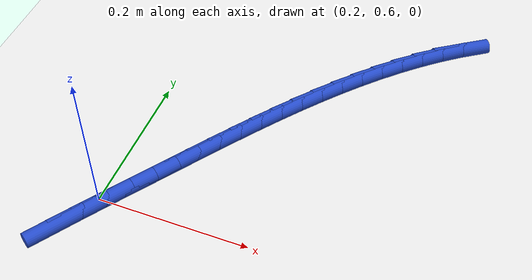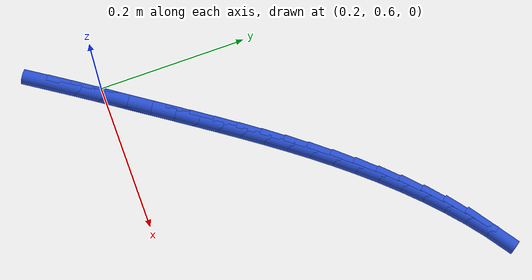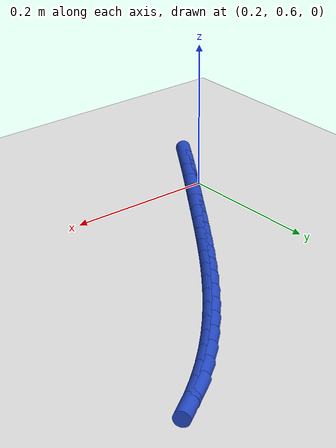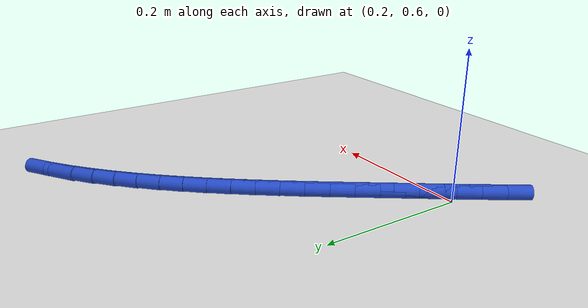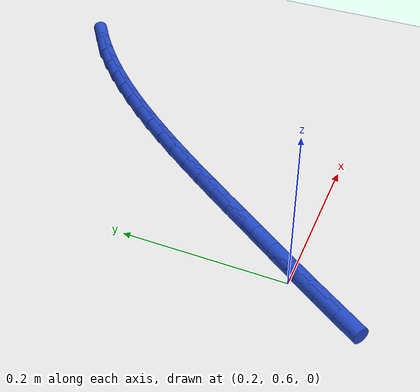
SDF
<sdf version="1.6">
 <world name="default">
  <model name="ground_plane">
   <static>1</static>
   <link name="link">
    <collision name="collision">
     <geometry><plane><normal>0 0 1</normal><size>100 100</size></plane></geometry>
     <surface><friction><ode><mu>100</mu><mu2>50</mu2></ode></friction></surface>
    </collision>
    <visual name="visual">
     <cast_shadows>0</cast_shadows>
     <geometry><plane><normal>0 0 1</normal><size>100 100</size></plane></geometry>
     <material>
      <script><uri>file://media/materials/scripts/gazebo.material</uri><name>Gazebo/WhiteGlow</name></script>
     </material>
    </visual>
   </link>
  </model>
  <model name="line">
   <link name="link_18">
    <pose>0.17419282601120892 0.540691129927328 0.01 0 1.57 0.9867921795562007</pose>
    <collision name="collision">
     <geometry><cylinder><radius>0.01</radius><length>0.08</length></cylinder></geometry>
    </collision>
    <visual name="visual">
     <material>
      <script><name>Gazebo/Blue</name><uri>file://media/materials/scripts/gazebo.material</uri></script>
     </material>
     <geometry><cylinder><radius>0.01</radius><length>0.08</length></cylinder></geometry>
    </visual>
   </link>
   <link name="link_19">
    <pose>0.19209507505564863 0.5677785478877495 0.01 0 1.57 0.9778795110179378</pose>
    <collision name="collision">
     <geometry><cylinder><radius>0.01</radius><length>0.08</length></cylinder></geometry>
    </collision>
    <visual name="visual">
     <material>
      <script><name>Gazebo/Blue</name><uri>file://media/materials/scripts/gazebo.material</uri></script>
     </material>
     <geometry><cylinder><radius>0.01</radius><length>0.08</length></cylinder></geometry>
    </visual>
   </link>
   <link name="link_20">
    <pose>0.2102653810658046 0.5947459267097743 0.01 0 1.57 0.9722698907152042</pose>
    <collision name="collision">
     <geometry><cylinder><radius>0.01</radius><length>0.08</length></cylinder></geometry>
    </collision>
    <visual name="visual">
     <material>
      <script><name>Gazebo/Blue</name><uri>file://media/materials/scripts/gazebo.material</uri></script>
     </material>
     <geometry><cylinder><radius>0.01</radius><length>0.08</length></cylinder></geometry>
    </visual>
   </link>
   <link name="link_21">
    <pose>0.22860094950167287 0.6216318811955966 0.01 0 1.57 0.9699428429115506</pose>
    <collision name="collision">
     <geometry><cylinder><radius>0.01</radius><length>0.08</length></cylinder></geometry>
    </collision>
    <visual name="visual">
     <material>
      <script><name>Gazebo/Blue</name><uri>file://media/materials/scripts/gazebo.material</uri></script>
     </material>
     <geometry><cylinder><radius>0.01</radius><length>0.08</length></cylinder></geometry>
    </visual>
   </link>
   <link name="link_22">
    <pose>0.24699898582324953 0.6484750261474106 0.01 0 1.57 0.9704906754867219</pose>
    <collision name="collision">
     <geometry><cylinder><radius>0.01</radius><length>0.08</length></cylinder></geometry>
    </collision>
    <visual name="visual">
     <material>
      <script><name>Gazebo/Blue</name><uri>file://media/materials/scripts/gazebo.material</uri></script>
     </material>
     <geometry><cylinder><radius>0.01</radius><length>0.08</length></cylinder></geometry>
    </visual>
   </link>
   <link name="link_23">
    <pose>0.26536793924448093 0.6753072486074341 0.01 0 1.57 0.9700519413748757</pose>
    <collision name="collision">
     <geometry><cylinder><radius>0.01</radius><length>0.08</length></cylinder></geometry>
    </collision>
    <visual name="visual">
     <material>
      <script><name>Gazebo/Blue</name><uri>file://media/materials/scripts/gazebo.material</uri></script>
     </material>
     <geometry><cylinder><radius>0.01</radius><length>0.08</length></cylinder></geometry>
    </visual>
   </link>
   <link name="link_24">
    <pose>0.28372426789440097 0.702095807909101 0.01 0 1.57 0.9664612072575871</pose>
    <collision name="collision">
     <geometry><cylinder><radius>0.01</radius><length>0.08</length></cylinder></geometry>
    </collision>
    <visual name="visual">
     <material>
      <script><name>Gazebo/Blue</name><uri>file://media/materials/scripts/gazebo.material</uri></script>
     </material>
     <geometry><cylinder><radius>0.01</radius><length>0.08</length></cylinder></geometry>
    </visual>
   </link>
   <link name="link_25">
    <pose>0.302144658419343 0.7287719253321949 0.01 0 1.57 0.9596743345228159</pose>
    <collision name="collision">
     <geometry><cylinder><radius>0.01</radius><length>0.08</length></cylinder></geometry>
    </collision>
    <visual name="visual">
     <material>
      <script><name>Gazebo/Blue</name><uri>file://media/materials/scripts/gazebo.material</uri></script>
     </material>
     <geometry><cylinder><radius>0.01</radius><length>0.08</length></cylinder></geometry>
    </visual>
   </link>
   <link name="link_26">
    <pose>0.320706450802204 0.7552664312290914 0.01 0 1.57 0.9496638863237736</pose>
    <collision name="collision">
     <geometry><cylinder><radius>0.01</radius><length>0.08</length></cylinder></geometry>
    </collision>
    <visual name="visual">
     <material>
      <script><name>Gazebo/Blue</name><uri>file://media/materials/scripts/gazebo.material</uri></script>
     </material>
     <geometry><cylinder><radius>0.01</radius><length>0.08</length></cylinder></geometry>
    </visual>
   </link>
   <link name="link_27">
    <pose>0.3394869850258814 0.7815101559521671 0.01 0 1.57 0.936397704067074</pose>
    <collision name="collision">
     <geometry><cylinder><radius>0.01</radius><length>0.08</length></cylinder></geometry>
    </collision>
    <visual name="visual">
     <material>
      <script><name>Gazebo/Blue</name><uri>file://media/materials/scripts/gazebo.material</uri></script>
     </material>
     <geometry><cylinder><radius>0.01</radius><length>0.08</length></cylinder></geometry>
    </visual>
   </link>
   <link name="link_28">
    <pose>0.3585636010732723 0.8074339298537975 0.01 0 1.57 0.9198419283635109</pose>
    <collision name="collision">
     <geometry><cylinder><radius>0.01</radius><length>0.08</length></cylinder></geometry>
    </collision>
    <visual name="visual">
     <material>
      <script><name>Gazebo/Blue</name><uri>file://media/materials/scripts/gazebo.material</uri></script>
     </material>
     <geometry><cylinder><radius>0.01</radius><length>0.08</length></cylinder></geometry>
    </visual>
   </link>
   <link name="link_29">
    <pose>0.3780136389272735 0.8329685832863584 0.01 0 1.57 0.89996518725371</pose>
    <collision name="collision">
     <geometry><cylinder><radius>0.01</radius><length>0.08</length></cylinder></geometry>
    </collision>
    <visual name="visual">
     <material>
      <script><name>Gazebo/Blue</name><uri>file://media/materials/scripts/gazebo.material</uri></script>
     </material>
     <geometry><cylinder><radius>0.01</radius><length>0.08</length></cylinder></geometry>
    </visual>
   </link>
   <link name="link_30">
    <pose>0.39791443857078285 0.8580449466022263 0.01 0 1.57 0.8767440298176872</pose>
    <collision name="collision">
     <geometry><cylinder><radius>0.01</radius><length>0.08</length></cylinder></geometry>
    </collision>
    <visual name="visual">
     <material>
      <script><name>Gazebo/Blue</name><uri>file://media/materials/scripts/gazebo.material</uri></script>
     </material>
     <geometry><cylinder><radius>0.01</radius><length>0.08</length></cylinder></geometry>
    </visual>
   </link>
   <link name="link_31">
    <pose>0.41834333998669704 0.8825938501537769 0.01 0 1.57 0.8501696316024283</pose>
    <collision name="collision">
     <geometry><cylinder><radius>0.01</radius><length>0.08</length></cylinder></geometry>
    </collision>
    <visual name="visual">
     <material>
      <script><name>Gazebo/Blue</name><uri>file://media/materials/scripts/gazebo.material</uri></script>
     </material>
     <geometry><cylinder><radius>0.01</radius><length>0.08</length></cylinder></geometry>
    </visual>
   </link>
   <link name="link_32">
    <pose>0.43937768315791337 0.9065461242933861 0.01 0 1.57 0.8202556971892131</pose>
    <collision name="collision">
     <geometry><cylinder><radius>0.01</radius><length>0.08</length></cylinder></geometry>
    </collision>
    <visual name="visual">
     <material>
      <script><name>Gazebo/Blue</name><uri>file://media/materials/scripts/gazebo.material</uri></script>
     </material>
     <geometry><cylinder><radius>0.01</radius><length>0.08</length></cylinder></geometry>
    </visual>
   </link>
   <link name="link_33">
    <pose>0.46109480806732905 0.9298325993734299 0.01 0 1.57 0.78704732465702</pose>
    <collision name="collision">
     <geometry><cylinder><radius>0.01</radius><length>0.08</length></cylinder></geometry>
    </collision>
    <visual name="visual">
     <material>
      <script><name>Gazebo/Blue</name><uri>file://media/materials/scripts/gazebo.material</uri></script>
     </material>
     <geometry><cylinder><radius>0.01</radius><length>0.08</length></cylinder></geometry>
    </visual>
   </link>
   <link name="link_34">
    <pose>0.48357205469784126 0.9523841057462843 0.01 0 1.57 0.7505631391946278</pose>
    <collision name="collision">
     <geometry><cylinder><radius>0.01</radius><length>0.08</length></cylinder></geometry>
    </collision>
    <visual name="visual">
     <material>
      <script><name>Gazebo/Blue</name><uri>file://media/materials/scripts/gazebo.material</uri></script>
     </material>
     <geometry><cylinder><radius>0.01</radius><length>0.08</length></cylinder></geometry>
    </visual>
   </link>
   <link name="link_35">
    <pose>0.5068865001008068 0.9741282972345386 0.01 0 1.57 0.7093793388604239</pose>
    <collision name="collision">
     <geometry><cylinder><radius>0.01</radius><length>0.08</length></cylinder></geometry>
    </collision>
    <visual name="visual">
     <material>
      <script><name>Gazebo/Blue</name><uri>file://media/materials/scripts/gazebo.material</uri></script>
     </material>
     <geometry><cylinder><radius>0.01</radius><length>0.08</length></cylinder></geometry>
    </visual>
   </link>
   <link name="link_36">
    <pose>0.5311093953350178 0.9949224426514051 0.01 0 1.57 0.661904533931735</pose>
    <collision name="collision">
     <geometry><cylinder><radius>0.01</radius><length>0.08</length></cylinder></geometry>
    </collision>
    <visual name="visual">
     <material>
      <script><name>Gazebo/Blue</name><uri>file://media/materials/scripts/gazebo.material</uri></script>
     </material>
     <geometry><cylinder><radius>0.01</radius><length>0.08</length></cylinder></geometry>
    </visual>
   </link>
   <link name="link_37">
    <pose>0.5563062858925848 1.014554880690486 0.01 0 1.57 0.607928343341535</pose>
    <collision name="collision">
     <geometry><cylinder><radius>0.01</radius><length>0.08</length></cylinder></geometry>
    </collision>
    <visual name="visual">
     <material>
      <script><name>Gazebo/Blue</name><uri>file://media/materials/scripts/gazebo.material</uri></script>
     </material>
     <geometry><cylinder><radius>0.01</radius><length>0.08</length></cylinder></geometry>
    </visual>
   </link>
  </model>
 </world>
</sdf>
